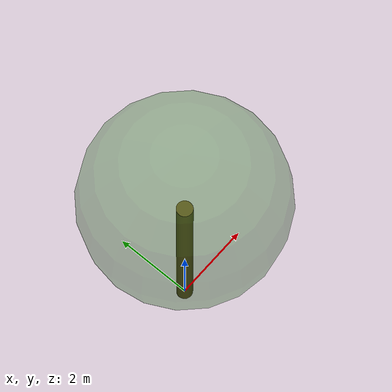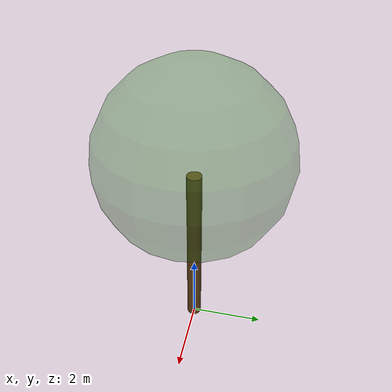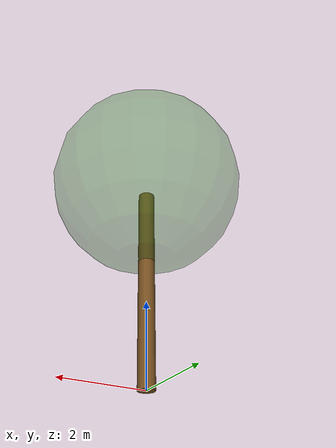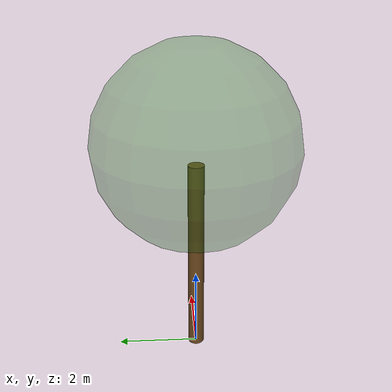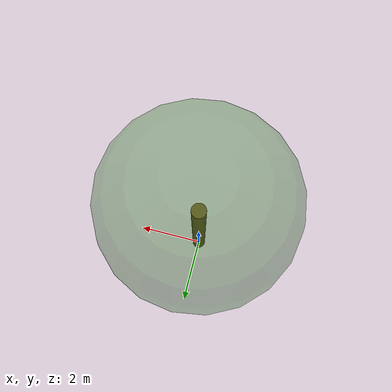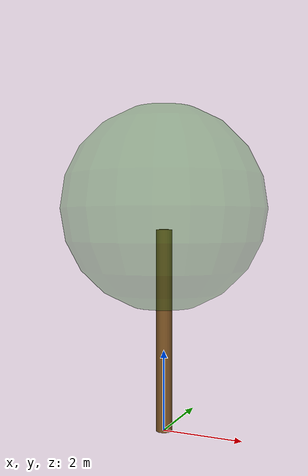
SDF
<?xml version="1.0" ?>
<sdf version="1.6">
  <model name="oak_tree_local">
    <static>true</static>
    <link name="trunk">
      <!-- 树干 -->
      <collision name="trunk_collision">
        <pose>0 0 2.5 0 0 0</pose>
        <geometry>
          <cylinder><radius>0.2</radius><length>5.0</length></cylinder>
        </geometry>
      </collision>
      <visual name="trunk_visual">
        <pose>0 0 2.5 0 0 0</pose>
        <geometry>
          <cylinder><radius>0.2</radius><length>5.0</length></cylinder>
        </geometry>
        <material>
          <ambient>0.35 0.22 0.08 1</ambient>
          <diffuse>0.45 0.3 0.12 1</diffuse>
        </material>
      </visual>
      <!-- 树冠(球体) -->
      <collision name="canopy_collision">
        <pose>0 0 5.5 0 0 0</pose>
        <geometry>
          <sphere><radius>2.5</radius></sphere>
        </geometry>
      </collision>
      <visual name="canopy_visual">
        <pose>0 0 5.5 0 0 0</pose>
        <geometry>
          <sphere><radius>2.5</radius></sphere>
        </geometry>
        <material>
          <ambient>0.08 0.32 0.05 0.35</ambient>
          <diffuse>0.12 0.45 0.08 0.35</diffuse>
        </material>
        <transparency>0.6</transparency>
      </visual>
    </link>
  </model>
</sdf>
